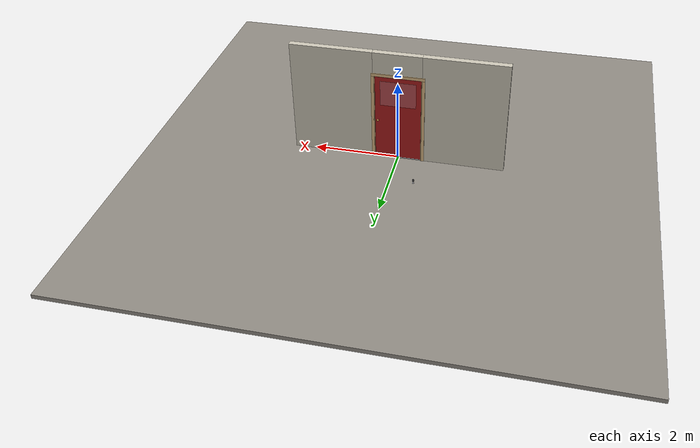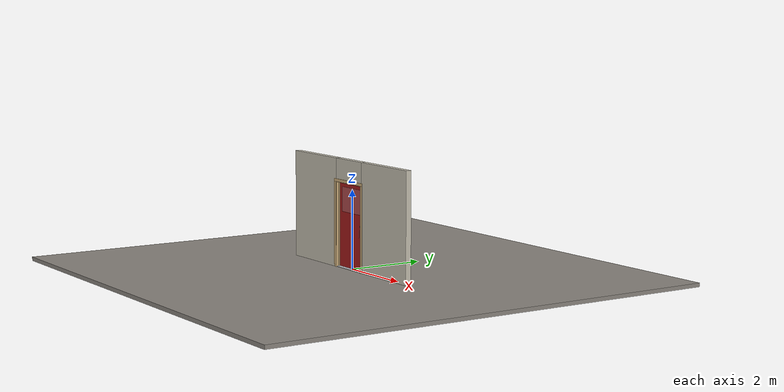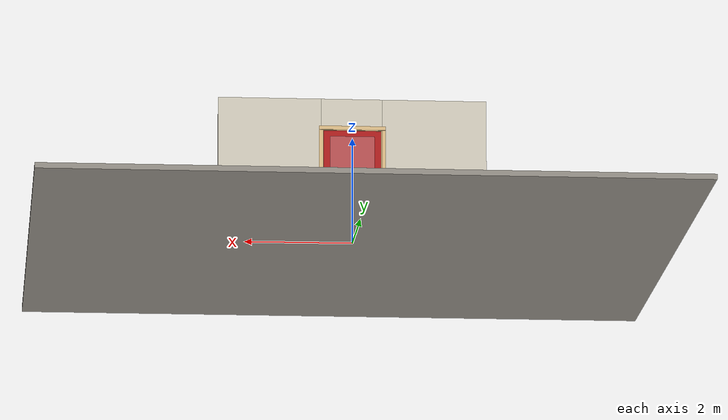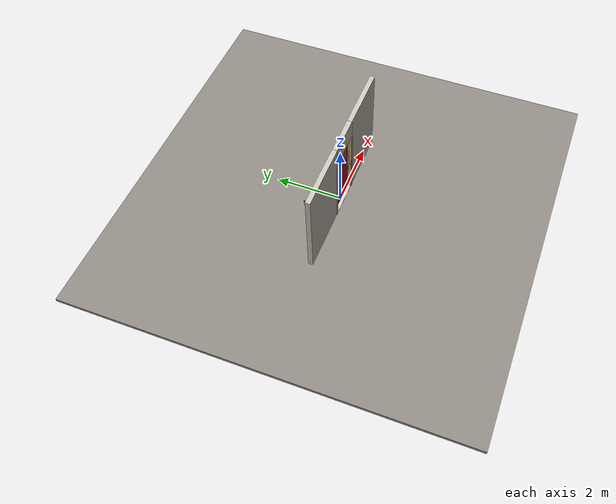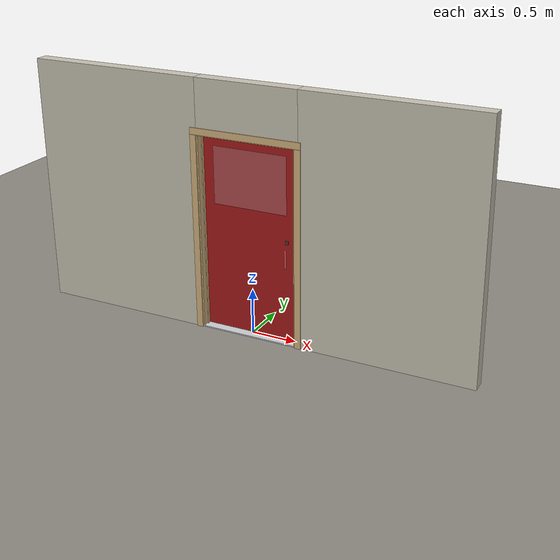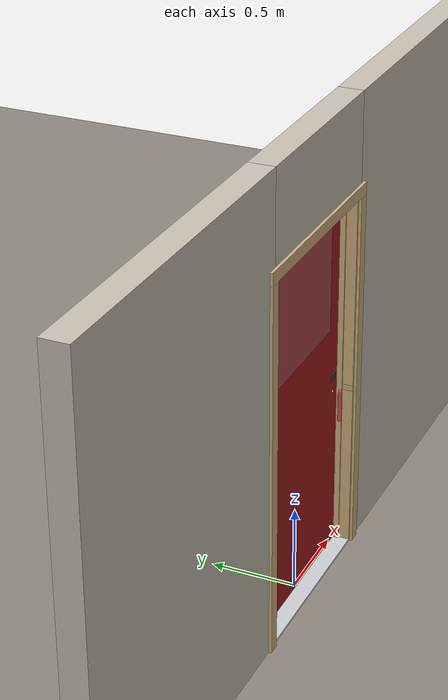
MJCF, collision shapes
<?xml version="1.0" ?>
<mujoco model="db0330_swing_single_full">
  <compiler angle="radian" meshdir="../../hardware" texturedir="../../textures" autolimits="true" inertiafromgeom="false"/>
  <option timestep="0.002" integrator="implicitfast" cone="elliptic" impratio="10" noslip_iterations="3">
    <flag multiccd="enable"/>
  </option>
  <size memory="16M"/>
  <default>
    <geom condim="4" solref="0.005 1" solimp="0.95 0.99 0.001"/>
    <joint solreflimit="0.005 1" solimplimit="0.95 0.99 0.001"/>
    <tendon solreflimit="0.005 1"/>
    <equality solref="0.002 1"/>
  </default>
  <visual>
    <headlight ambient="0.4 0.4 0.4" diffuse="0.7 0.7 0.7" specular="0.2 0.2 0.2"/>
    <quality shadowsize="4096"/>
    <map znear="0.01" zfar="60"/>
  </visual>
  <asset>
    <mesh name="handleset_beb5526ad2" file="handleset_beb5526ad2.obj"/>
    <mesh name="hinge_e22b26c0c1" file="hinge_e22b26c0c1.obj"/>
    <mesh name="hinge_jamb_e1d088f8dc" file="hinge_jamb_e1d088f8dc.obj"/>
    <mesh name="knob_d1888f6f03" file="knob_d1888f6f03.obj"/>
    <mesh name="peephole_f829311a59" file="peephole_f829311a59.obj"/>
    <material name="mat_floor" rgba="0.55 0.53 0.5 1" specular="0.2" shininess="0.15" reflectance="0"/>
    <material name="mat_wall" rgba="0.78 0.76 0.7 1" specular="0.2" shininess="0.1" reflectance="0"/>
    <material name="mat_leaf" rgba="0.65 0.1 0.1 1" specular="0.23" shininess="0.47" reflectance="0.02"/>
    <material name="mat_glass" rgba="0.85 0.92 0.95 0.25" specular="0.2" shininess="0.95" reflectance="0.1"/>
    <material name="mat_hinge" rgba="0.65 0.66 0.68 1" specular="0.74" shininess="0.5" reflectance="0.36"/>
    <material name="mat_op_bronze" rgba="0.3 0.22 0.15 1" specular="0.74" shininess="0.5" reflectance="0.36"/>
    <material name="mat_op_brass" rgba="0.85 0.66 0.3 1" specular="0.8" shininess="0.75" reflectance="0.4"/>
    <material name="mat_trim" rgba="0.85 0.66 0.3 1" specular="0.8" shininess="0.75" reflectance="0.4"/>
    <material name="mat_bolt" rgba="0.85 0.66 0.3 1" specular="0.8" shininess="0.75" reflectance="0.4"/>
    <material name="mat_frame" rgba="0.82 0.7 0.5 1" specular="0.2" shininess="0.45" reflectance="0"/>
    <material name="mat_seal" rgba="0.1 0.1 0.1 1" specular="0.2" shininess="0.1" reflectance="0"/>
    <material name="mat_threshold" rgba="0.8 0.81 0.83 1" specular="0.8" shininess="0.6" reflectance="0.4"/>
    <material name="mat_peephole" rgba="0.85 0.66 0.3 1" specular="0.8" shininess="0.75" reflectance="0.4"/>
    <material name="mat_bumper_stop" rgba="0.08 0.08 0.08 1" specular="0.2" shininess="0.1" reflectance="0"/>
    <material name="mat_stop_base" rgba="0.9 0.9 0.92 1" specular="0.8" shininess="0.9" reflectance="0.4"/>
    <texture name="skybox" type="skybox" builtin="gradient" rgb1="0.6 0.7 0.85" rgb2="0.9 0.92 0.95" width="256" height="256"/>
  </asset>
  <worldbody>
    <light name="sun" pos="1.5 -2.5 4" dir="-0.3 0.5 -0.8" directional="true" diffuse="0.8 0.8 0.8" specular="0.3 0.3 0.3" castshadow="true"/>
    <light name="fill" pos="-1.5 2.5 3" dir="0.3 -0.5 -0.7" directional="true" diffuse="0.35 0.35 0.4" castshadow="false"/>
    <camera name="robot_view" pos="0 -2.681312 1.812087" xyaxes="1 0 0 0 0.26963 0.962964" fovy="52"/>
    <camera name="far_view" pos="0 2.594313 1.812087" xyaxes="-1 0 0 0 -0.26963 0.962964" fovy="52"/>
    <camera name="iso" pos="2.004737 -2.259262 2.234138" xyaxes="0.741536 0.670913 0 -0.242917 0.268487 0.932151" fovy="46"/>
    <camera name="detail_handle" pos="0.608 -0.882 1.236" xyaxes="0.97561 0.219512 0 -0.070934 0.315262 0.94635" fovy="38"/>
    <geom name="floor" type="box" size="6 6 0.05" pos="0 0 -0.05" material="mat_floor" group="0" contype="1" conaffinity="1" friction="0.8 0.005 0.0001" density="2400"/>
    <geom name="wall_left" type="box" size="0.972 0.0725 1.3735" pos="-1.528 -0.0435 1.3735" material="mat_wall" group="0" contype="1" conaffinity="1" friction="0.6 0.005 0.0001" density="800"/>
    <geom name="wall_right" type="box" size="0.957 0.0725 1.3735" pos="1.543 -0.0435 1.3735" material="mat_wall" group="0" contype="1" conaffinity="1" friction="0.6 0.005 0.0001" density="800"/>
    <geom name="wall_header" type="box" size="0.571 0.0725 0.2755" pos="0.015 -0.0435 2.4715" material="mat_wall" group="0" contype="1" conaffinity="1" friction="0.6 0.005 0.0001" density="800"/>
    <geom name="hinge_0_jamb" type="mesh" mesh="hinge_jamb_e1d088f8dc" pos="-0.534 0.029 0.267" quat="0 1 0 0" material="mat_hinge" group="1" contype="0" conaffinity="0" density="7850"/>
    <geom name="hinge_1_jamb" type="mesh" mesh="hinge_jamb_e1d088f8dc" pos="-0.534 0.029 1.08" quat="0 1 0 0" material="mat_hinge" group="1" contype="0" conaffinity="0" density="7850"/>
    <geom name="hinge_2_jamb" type="mesh" mesh="hinge_jamb_e1d088f8dc" pos="-0.534 0.029 1.963" quat="0 1 0 0" material="mat_hinge" group="1" contype="0" conaffinity="0" density="7850"/>
    <geom name="jamb_hinge" type="box" size="0.0095 0.0725 1.0735" pos="-0.5465 -0.0435 1.0735" material="mat_frame" group="0" contype="1" conaffinity="1" friction="0.6 0.005 0.0001" density="400"/>
    <geom name="strike_1016_wall_n" type="box" size="0.0245 0.054075 0.0167" pos="0.5615 -0.061925 1.016" material="mat_frame" group="0" contype="1" conaffinity="1" friction="0.6 0.005 0.0001" density="400"/>
    <geom name="strike_1016_wall_p" type="box" size="0.0245 0.008 0.0167" pos="0.5615 0.01585 1.016" material="mat_frame" group="0" contype="1" conaffinity="1" friction="0.6 0.005 0.0001" density="400"/>
    <geom name="strike_1016_ramp" type="box" size="0.0245 0.01649 0.0167" pos="0.566136 0.028673 1.016" quat="0.977148 0 0 -0.212558" material="mat_frame" group="0" contype="1" conaffinity="1" friction="0.12 0.005 0.0001" density="400"/>
    <geom name="strike_1016_back" type="box" size="0.01615 0.00785 0.0167" pos="0.56985 0 1.016" material="mat_frame" group="0" contype="1" conaffinity="1" friction="0.6 0.005 0.0001" density="400"/>
    <geom name="jamb_strike_0" type="box" size="0.0245 0.0725 0.49965" pos="0.5615 -0.0435 0.49965" material="mat_frame" group="0" contype="1" conaffinity="1" friction="0.6 0.005 0.0001" density="400"/>
    <geom name="jamb_strike_1" type="box" size="0.0245 0.0725 0.55715" pos="0.5615 -0.0435 1.58985" material="mat_frame" group="0" contype="1" conaffinity="1" friction="0.6 0.005 0.0001" density="400"/>
    <geom name="jamb_head" type="box" size="0.571 0.0725 0.0095" pos="0.015 -0.0435 2.1565" material="mat_frame" group="0" contype="1" conaffinity="1" friction="0.6 0.005 0.0001" density="400"/>
    <geom name="head_stud" type="box" size="0.571 0.0725 0.015" pos="0.015 -0.0435 2.181" material="mat_wall" group="0" contype="1" conaffinity="1" friction="0.6 0.005 0.0001" density="500"/>
    <geom name="stop_hinge" type="box" size="0.0055 0.016 1.0735" pos="-0.5315 -0.0385 1.0735" material="mat_frame" group="0" contype="1" conaffinity="1" friction="0.6 0.005 0.0001" density="400"/>
    <geom name="stop_strike" type="box" size="0.0055 0.016 1.0735" pos="0.5315 -0.0385 1.0735" material="mat_frame" group="0" contype="1" conaffinity="1" friction="0.6 0.005 0.0001" density="400"/>
    <geom name="stop_head" type="box" size="0.537 0.016 0.0055" pos="0 -0.0385 2.1415" material="mat_frame" group="0" contype="1" conaffinity="1" friction="0.6 0.005 0.0001" density="400"/>
    <geom name="seal_hinge" type="box" size="0.004 0.004 1.0735" pos="-0.534 -0.026 1.0735" material="mat_seal" group="1" contype="0" conaffinity="0" density="1100"/>
    <geom name="seal_strike" type="box" size="0.004 0.004 1.0735" pos="0.534 -0.026 1.0735" material="mat_seal" group="1" contype="0" conaffinity="0" density="1100"/>
    <geom name="seal_head" type="box" size="0.517 0.004 0.008" pos="0 -0.026 2.135" material="mat_seal" group="1" contype="0" conaffinity="0" density="1100"/>
    <geom name="casing_l_n" type="box" size="0.035 0.008 1.083" pos="-0.586 -0.124 1.0735" material="mat_frame" group="2" contype="0" conaffinity="0" density="400"/>
    <geom name="casing_r_n" type="box" size="0.035 0.008 1.083" pos="0.586 -0.124 1.0735" material="mat_frame" group="2" contype="0" conaffinity="0" density="400"/>
    <geom name="casing_h_n" type="box" size="0.621 0.008 0.035" pos="0 -0.124 2.196" material="mat_frame" group="2" contype="0" conaffinity="0" density="400"/>
    <geom name="casing_l_p" type="box" size="0.035 0.008 1.083" pos="-0.586 0.037 1.0735" material="mat_frame" group="2" contype="0" conaffinity="0" density="400"/>
    <geom name="casing_r_p" type="box" size="0.035 0.008 1.083" pos="0.586 0.037 1.0735" material="mat_frame" group="2" contype="0" conaffinity="0" density="400"/>
    <geom name="casing_h_p" type="box" size="0.621 0.008 0.035" pos="0 0.037 2.196" material="mat_frame" group="2" contype="0" conaffinity="0" density="400"/>
    <geom name="threshold" type="box" size="0.556 0.0725 0.0065" pos="0 -0.0435 0.0065" material="mat_threshold" group="0" contype="1" conaffinity="1" friction="0.5 0.005 0.0001" density="2700"/>
    <geom name="door_stop_base" type="cylinder" size="0.022 0.003" pos="-0.55 0.93595 0.003" material="mat_stop_base" group="0" contype="1" conaffinity="1" friction="0.6 0.005 0.0001" density="7850"/>
    <geom name="door_stop_post" type="cylinder" size="0.012 0.0255" pos="-0.55 0.93595 0.0315" material="mat_stop_base" group="0" contype="1" conaffinity="1" friction="0.6 0.005 0.0001" density="7850"/>
    <geom name="door_stop_bumper" type="cylinder" size="0.022 0.02" pos="-0.55 0.93595 0.077" material="mat_bumper_stop" group="0" contype="1" conaffinity="1" friction="0.6 0.005 0.0001" density="1100"/>
    <site name="approach_point" pos="0 -1.5 0" quat="1 0 0 0" size="0.05" rgba="0.2 0.9 0.2 0.5" group="4"/>
    <site name="goal_point" pos="0 1.5 0" quat="1 0 0 0" size="0.05" rgba="0.2 0.9 0.2 0.5" group="4"/>
    <site name="door_plane_center" pos="0 0 1.0735" quat="1 0 0 0" size="0.02" rgba="0.2 0.9 0.2 0.5" group="4"/>
    <body name="leaf" pos="-0.537 0 0">
      <inertial pos="0.538387 -0.001513 1.07665" mass="32.730794" quat="-0.49469 0.500494 0.499807 0.504957" diaginertia="3.411756155 11.963569669 15.356995698"/>
      <joint name="leaf_hinge" type="hinge" axis="0 0 1" pos="0.003 0.029 0" limited="true" range="0 1.570796" solreflimit="0.02 1" damping="0.54954" frictionloss="2.246789" armature="0.02"/>
      <geom name="leaf_slab" type="box" size="0.5335 0.022 1.063" pos="0.5365 0 1.08" material="mat_leaf" group="0" contype="1" conaffinity="1" friction="0.4 0.005 0.0001" density="1"/>
      <geom name="leaf_glass_0" type="box" size="0.41613 0.0228 0.312522" pos="0.5365 0 1.724178" material="mat_glass" group="1" contype="0" conaffinity="0" density="1"/>
      <geom name="hinge_0" type="mesh" mesh="hinge_e22b26c0c1" pos="0.003 0.029 0.267" quat="0 1 0 0" material="mat_hinge" group="1" contype="0" conaffinity="0" density="7850"/>
      <geom name="hinge_1" type="mesh" mesh="hinge_e22b26c0c1" pos="0.003 0.029 1.08" quat="0 1 0 0" material="mat_hinge" group="1" contype="0" conaffinity="0" density="7850"/>
      <geom name="hinge_2" type="mesh" mesh="hinge_e22b26c0c1" pos="0.003 0.029 1.963" quat="0 1 0 0" material="mat_hinge" group="1" contype="0" conaffinity="0" density="7850"/>
      <geom name="leaf_handleset_n" type="mesh" mesh="handleset_beb5526ad2" pos="0.965 -0.022 0.956" quat="0.707107 0.707107 0 0" material="mat_op_bronze" group="1" contype="0" conaffinity="0" density="3000"/>
      <geom name="leaf_handleset_col_n" type="capsule" size="0.011 0.09" pos="0.965 -0.082 0.956" material="mat_op_bronze" group="3" contype="1" conaffinity="1" rgba="0.8 0.3 0.3 0.25" friction="0.7 0.01 0.0001" density="3000"/>
      <geom name="leaf_latch_bolt_faceplate" type="box" size="0.0006 0.01235 0.0267" pos="1.0694 0 1.016" material="mat_bolt" group="1" contype="0" conaffinity="0" density="8500"/>
      <geom name="peephole" type="mesh" mesh="peephole_f829311a59" pos="0.5365 -0.022 1.517" quat="0.707107 0.707107 0 0" material="mat_peephole" group="2" contype="0" conaffinity="0" density="8500"/>
      <site name="leaf_handleset_grip_n" pos="0.965 -0.082 0.956" quat="1 0 0 0" size="0.012" rgba="0.2 0.9 0.2 0.5" group="4"/>
      <site name="leaf_edge_mid" pos="1.07 0 1.063" quat="1 0 0 0" size="0.02" rgba="0.2 0.9 0.2 0.5" group="4"/>
      <body name="leaf_handle" pos="1 0 1.016">
        <inertial pos="0 0.052948 0" mass="0.60261" quat="0.5 0.5 0.5 0.5" diaginertia="0.000156736 0.000451151 0.000451151"/>
        <joint name="leaf_handle_hinge" type="hinge" axis="0 -1 0" limited="true" range="0 0.87" damping="0.142525" frictionloss="0.038" stiffness="0.5" springref="-0.5" armature="0.01"/>
        <geom name="leaf_handle_spindle" type="cylinder" size="0.006 0.03" pos="0 0 0" quat="0.707107 -0.707107 0 0" material="mat_op_brass" group="1" contype="0" conaffinity="0" density="7850"/>
        <geom name="leaf_handle_knob_p" type="mesh" mesh="knob_d1888f6f03" pos="0 0.022 0" quat="-0.707107 0.707107 0 0" material="mat_op_brass" group="1" contype="0" conaffinity="0" density="3000"/>
        <geom name="leaf_handle_knob_col_p" type="sphere" size="0.0243" pos="0 0.0685 0" material="mat_op_brass" group="0" contype="1" conaffinity="1" friction="0.9 0.01 0.0001" density="3000"/>
        <geom name="leaf_handle_knob_neck_p" type="cylinder" size="0.011 0.012" pos="0 0.034 0" quat="0.707107 -0.707107 0 0" material="mat_op_brass" group="3" contype="1" conaffinity="1" rgba="0.8 0.3 0.3 0.25" friction="0.6 0.005 0.0001" density="3000"/>
        <site name="leaf_handle_grip_p" pos="0 0.0685 0" quat="1 0 0 0" size="0.012" rgba="0.2 0.9 0.2 0.5" group="4"/>
      </body>
      <body name="leaf_thumbpiece" pos="0.965 -0.04 1.128">
        <inertial pos="0 0.004 0" mass="0.05184" quat="-0.5 0.5 0.5 0.5" diaginertia="0.000006981 0.000007488 0.000009124"/>
        <joint name="leaf_thumbpiece_hinge" type="hinge" axis="-1 0 0" pos="0 0 0.02" limited="true" range="0 0.35" damping="0.219407" frictionloss="0.058" stiffness="1.2" springref="-0.416667" armature="0.01"/>
        <geom name="leaf_thumbpiece_geom" type="box" size="0.018 0.004 0.02" pos="0 0 0" material="mat_op_bronze" group="0" contype="1" conaffinity="1" friction="0.6 0.005 0.0001" density="3000"/>
        <geom name="leaf_thumbpiece_boss" type="box" size="0.01 0.012 0.006" pos="0 0.012 0" material="mat_op_bronze" group="1" contype="0" conaffinity="0" density="3000"/>
        <site name="leaf_thumb_push" pos="0 -0.005 0.01" quat="1 0 0 0" size="0.01" rgba="0.2 0.9 0.2 0.5" group="4"/>
      </body>
      <body name="leaf_latch_bolt" pos="1.07 0 1.016">
        <inertial pos="-0.00865 0 0" mass="0.041419" quat="0.92388 -0.382683 0 0" diaginertia="0.000000798 0.000005598 0.000005598"/>
        <joint name="leaf_latch_bolt_slide" type="slide" axis="-1 0 0" limited="true" range="0 0.0127" damping="2" frictionloss="0.3" stiffness="300" springref="-0.008333" armature="0.1"/>
        <geom name="leaf_latch_bolt_capsule" type="capsule" size="0.00635 0.015" pos="-0.00865 0 0" quat="0.707107 0 0.707107 0" material="mat_bolt" group="0" contype="1" conaffinity="1" friction="0.2 0.005 0.0001" density="8500"/>
      </body>
    </body>
  </worldbody>
  <tendon>
    <fixed name="leaf_thumb_coupling" limited="true" range="0 10">
      <joint joint="leaf_latch_bolt_slide" coef="1"/>
      <joint joint="leaf_thumbpiece_hinge" coef="-0.039688"/>
    </fixed>
    <fixed name="leaf_latch_bolt_coupling" limited="true" range="0 10">
      <joint joint="leaf_latch_bolt_slide" coef="1"/>
      <joint joint="leaf_handle_hinge" coef="-0.015679"/>
    </fixed>
  </tendon>
  <sensor>
    <jointpos name="leaf_hinge_pos" joint="leaf_hinge"/>
    <jointvel name="leaf_hinge_vel" joint="leaf_hinge"/>
    <jointpos name="leaf_handle_hinge_pos" joint="leaf_handle_hinge"/>
    <jointvel name="leaf_handle_hinge_vel" joint="leaf_handle_hinge"/>
    <jointpos name="leaf_thumbpiece_hinge_pos" joint="leaf_thumbpiece_hinge"/>
    <jointvel name="leaf_thumbpiece_hinge_vel" joint="leaf_thumbpiece_hinge"/>
    <jointpos name="leaf_latch_bolt_slide_pos" joint="leaf_latch_bolt_slide"/>
    <jointvel name="leaf_latch_bolt_slide_vel" joint="leaf_latch_bolt_slide"/>
  </sensor>
</mujoco>
